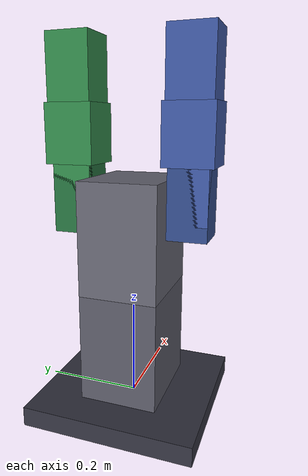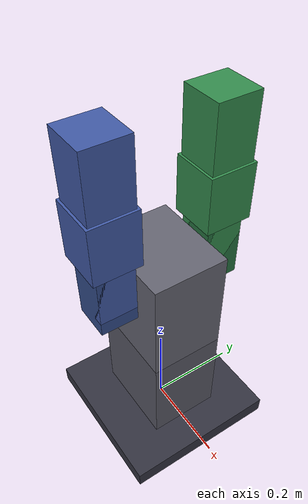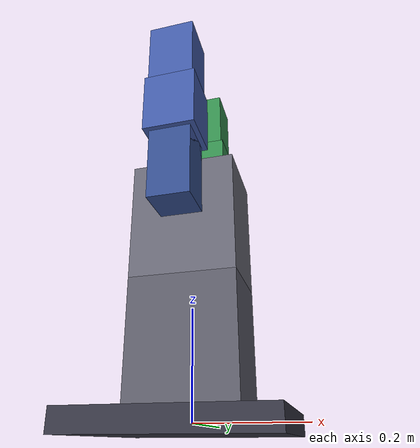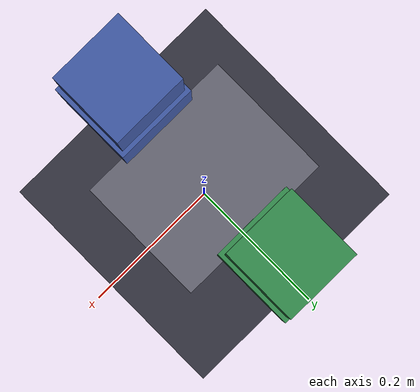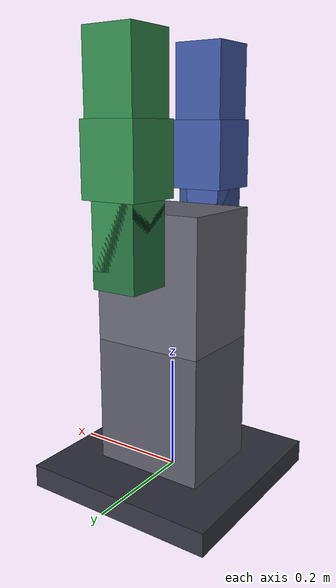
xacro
<?xml version="1.0"?>
<robot xmlns:xacro="http://www.ros.org/wiki/xacro" name="murphy">
  <!-- RS03 nominal caps (from robot.yaml actuators.rs03) -->
  <xacro:property name="effort_cap" value="60.0"/>
  <xacro:property name="velocity_cap" value="50.0"/>
  <xacro:property name="joint_damping" value="0.3"/>
  <xacro:property name="joint_friction" value="0.08"/>
  <xacro:property name="k_pos" value="15.0"/>
  <xacro:property name="k_vel" value="10.0"/>

  <xacro:macro name="box_inertial" params="m x y z">
    <inertial>
      <origin xyz="0 0 0" rpy="0 0 0"/>
      <mass value="${m}"/>
      <inertia
        ixx="${m * (y*y + z*z) / 12.0}"
        ixy="0.0"
        ixz="0.0"
        iyy="${m * (x*x + z*z) / 12.0}"
        iyz="0.0"
        izz="${m * (x*x + y*y) / 12.0}"/>
    </inertial>
  </xacro:macro>

  <xacro:macro name="box_link" params="name sx sy sz rgba mass">
    <link name="${name}">
      <visual>
        <origin xyz="0 0 0" rpy="0 0 0"/>
        <geometry>
          <box size="${sx} ${sy} ${sz}"/>
        </geometry>
        <material name="${name}_mat">
          <color rgba="${rgba}"/>
        </material>
      </visual>
      <collision>
        <origin xyz="0 0 0" rpy="0 0 0"/>
        <geometry>
          <box size="${sx} ${sy} ${sz}"/>
        </geometry>
      </collision>
      <xacro:box_inertial m="${mass}" x="${sx}" y="${sy}" z="${sz}"/>
    </link>
  </xacro:macro>

  <!-- Macro: revolute joint with hard limits, dynamics, soft safety band (~0.12 rad inside hard stops) -->
  <xacro:macro name="murphy_revolute" params="name parent child axis lower upper soft_lower soft_upper origin_xyz origin_rpy">
    <joint name="${name}" type="revolute">
      <origin xyz="${origin_xyz}" rpy="${origin_rpy}"/>
      <parent link="${parent}"/>
      <child link="${child}"/>
      <axis xyz="${axis}"/>
      <limit lower="${lower}" upper="${upper}" effort="${effort_cap}" velocity="${velocity_cap}"/>
      <dynamics damping="${joint_damping}" friction="${joint_friction}"/>
      <safety_controller
        k_position="${k_pos}"
        k_velocity="${k_vel}"
        soft_lower_limit="${soft_lower}"
        soft_upper_limit="${soft_upper}"/>
    </joint>
  </xacro:macro>

  <!-- Root -->
  <xacro:box_link name="base_link" sx="0.35" sy="0.35" sz="0.04" rgba="0.2 0.2 0.25 1" mass="2.0"/>

  <!-- Torso lower half (fixed to base); total torso height ~0.46 m from robot.yaml -->
  <xacro:box_link name="torso_lower_link" sx="0.20" sy="0.16" sz="0.23" rgba="0.35 0.35 0.4 1" mass="8.0"/>

  <joint name="base_to_torso_lower" type="fixed">
    <origin xyz="0 0 0.13" rpy="0 0 0"/>
    <parent link="base_link"/>
    <child link="torso_lower_link"/>
  </joint>

  <!-- Torso upper (yaw waist); limits from robot.yaml waist.rotation -->
  <xacro:box_link name="torso_upper_link" sx="0.20" sy="0.16" sz="0.23" rgba="0.4 0.4 0.45 1" mass="8.0"/>

  <xacro:murphy_revolute
    name="waist_rotation_joint"
    parent="torso_lower_link"
    child="torso_upper_link"
    axis="0 0 1"
    lower="-1.57"
    upper="1.57"
    soft_lower="-1.45"
    soft_upper="1.45"
    origin_xyz="0 0 0.23"
    origin_rpy="0 0 0"/>

  <!-- Left arm links (visual/collision only; joint origins define kinematics) -->
  <xacro:box_link name="l_shoulder_pitch_link" sx="0.08" sy="0.08" sz="0.14" rgba="0.2 0.55 0.3 1" mass="0.6"/>
  <xacro:box_link name="l_shoulder_roll_link" sx="0.10" sy="0.10" sz="0.12" rgba="0.2 0.55 0.3 1" mass="0.5"/>
  <xacro:box_link name="l_upper_arm_link" sx="0.09" sy="0.09" sz="0.22" rgba="0.2 0.55 0.3 1" mass="0.7"/>
  <xacro:box_link name="l_forearm_link" sx="0.08" sy="0.08" sz="0.20" rgba="0.15 0.45 0.25 1" mass="0.5"/>

  <!-- arm_left from robot.yaml -->
  <xacro:murphy_revolute
    name="l_shoulder_pitch_joint"
    parent="torso_upper_link"
    child="l_shoulder_pitch_link"
    axis="0 1 0"
    lower="-1.57"
    upper="3.14"
    soft_lower="-1.45"
    soft_upper="3.02"
    origin_xyz="0 0.12 0.10"
    origin_rpy="0 0 0"/>

  <xacro:murphy_revolute
    name="l_shoulder_roll_joint"
    parent="l_shoulder_pitch_link"
    child="l_shoulder_roll_link"
    axis="1 0 0"
    lower="0.0"
    upper="3.14"
    soft_lower="0.12"
    soft_upper="3.02"
    origin_xyz="0 0 0.10"
    origin_rpy="0 0 0"/>

  <xacro:murphy_revolute
    name="l_upper_arm_yaw_joint"
    parent="l_shoulder_roll_link"
    child="l_upper_arm_link"
    axis="0 0 1"
    lower="-1.57"
    upper="1.57"
    soft_lower="-1.45"
    soft_upper="1.45"
    origin_xyz="0 0 0.08"
    origin_rpy="0 0 0"/>

  <xacro:murphy_revolute
    name="l_elbow_pitch_joint"
    parent="l_upper_arm_link"
    child="l_forearm_link"
    axis="0 1 0"
    lower="0.0"
    upper="2.36"
    soft_lower="0.12"
    soft_upper="2.24"
    origin_xyz="0 0 -0.18"
    origin_rpy="0 0 0"/>

  <!-- Right arm -->
  <xacro:box_link name="r_shoulder_pitch_link" sx="0.08" sy="0.08" sz="0.14" rgba="0.25 0.35 0.65 1" mass="0.6"/>
  <xacro:box_link name="r_shoulder_roll_link" sx="0.10" sy="0.10" sz="0.12" rgba="0.25 0.35 0.65 1" mass="0.5"/>
  <xacro:box_link name="r_upper_arm_link" sx="0.09" sy="0.09" sz="0.22" rgba="0.25 0.35 0.65 1" mass="0.7"/>
  <xacro:box_link name="r_forearm_link" sx="0.08" sy="0.08" sz="0.20" rgba="0.2 0.3 0.55 1" mass="0.5"/>

  <xacro:murphy_revolute
    name="r_shoulder_pitch_joint"
    parent="torso_upper_link"
    child="r_shoulder_pitch_link"
    axis="0 1 0"
    lower="-1.57"
    upper="3.14"
    soft_lower="-1.45"
    soft_upper="3.02"
    origin_xyz="0 -0.12 0.10"
    origin_rpy="0 0 0"/>

  <xacro:murphy_revolute
    name="r_shoulder_roll_joint"
    parent="r_shoulder_pitch_link"
    child="r_shoulder_roll_link"
    axis="1 0 0"
    lower="-3.14"
    upper="0.0"
    soft_lower="-3.02"
    soft_upper="-0.12"
    origin_xyz="0 0 0.10"
    origin_rpy="0 0 0"/>

  <xacro:murphy_revolute
    name="r_upper_arm_yaw_joint"
    parent="r_shoulder_roll_link"
    child="r_upper_arm_link"
    axis="0 0 1"
    lower="-1.57"
    upper="1.57"
    soft_lower="-1.45"
    soft_upper="1.45"
    origin_xyz="0 0 0.08"
    origin_rpy="0 0 0"/>

  <xacro:murphy_revolute
    name="r_elbow_pitch_joint"
    parent="r_upper_arm_link"
    child="r_forearm_link"
    axis="0 1 0"
    lower="-2.36"
    upper="0.0"
    soft_lower="-2.24"
    soft_upper="-0.12"
    origin_xyz="0 0 -0.18"
    origin_rpy="0 0 0"/>
</robot>
